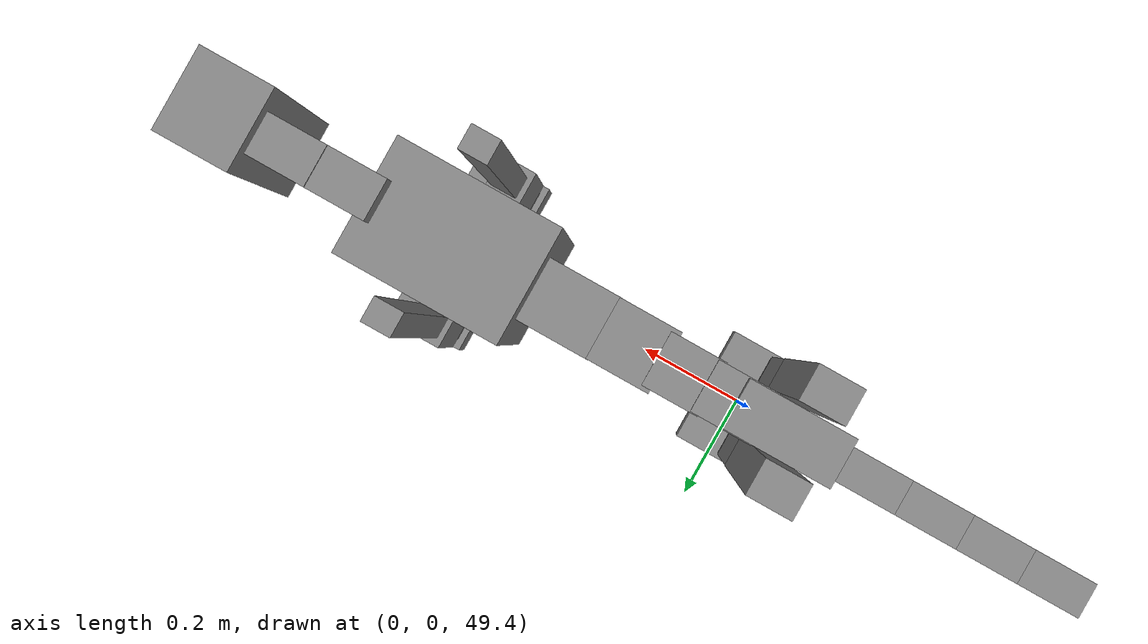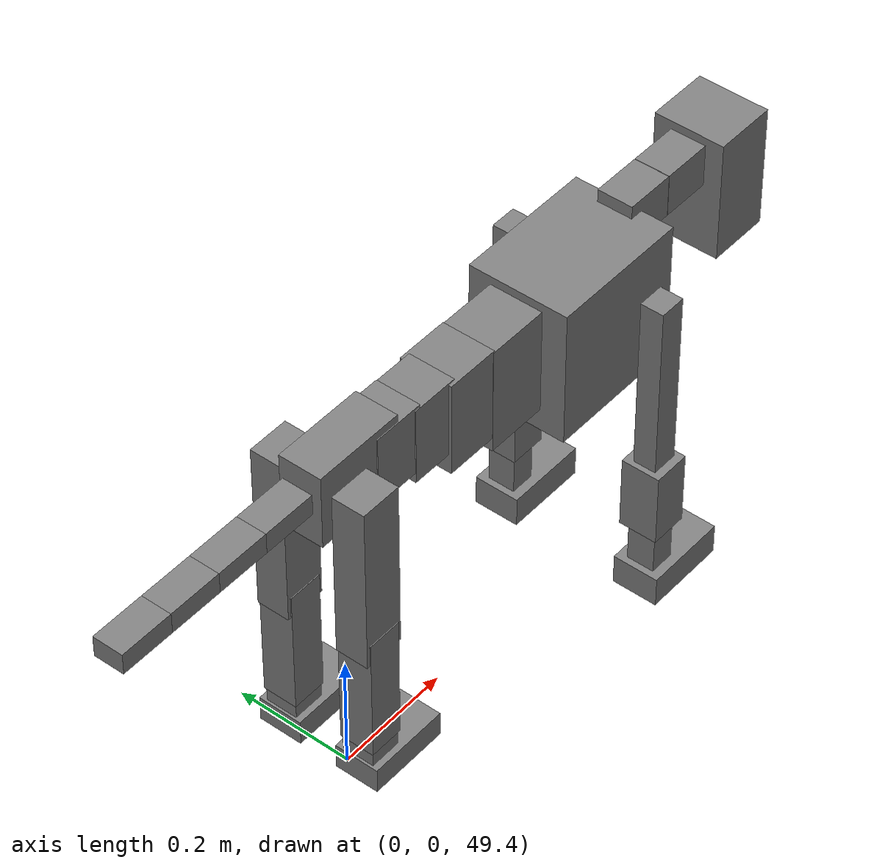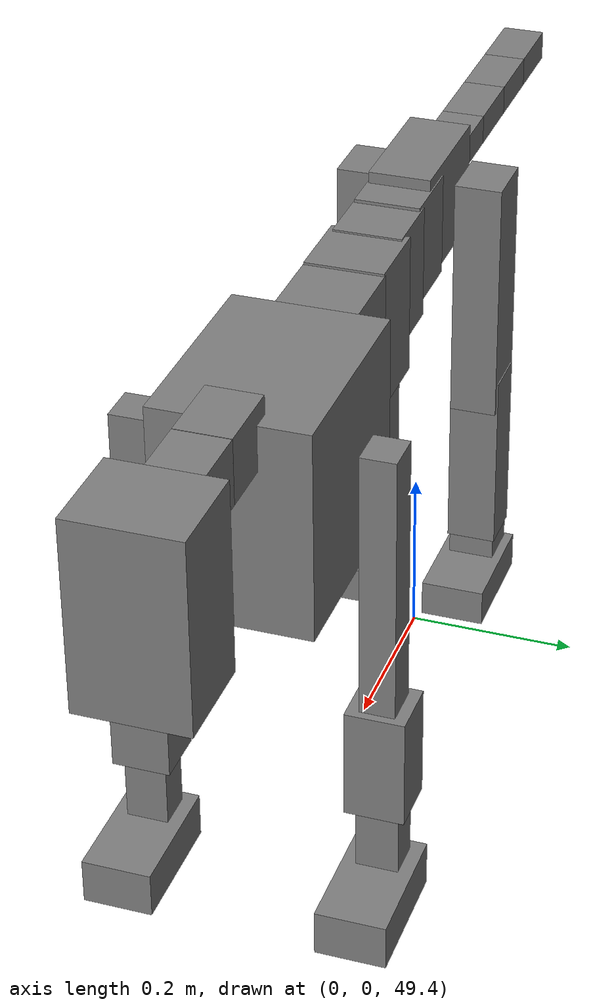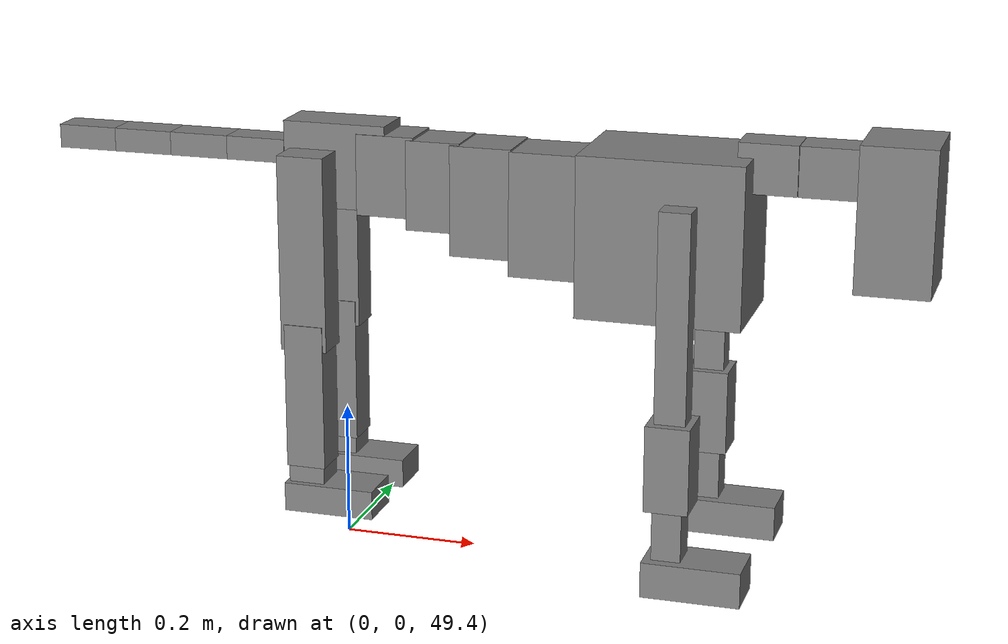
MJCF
<mujoco model="dog">

    <default>
        <joint armature="0.02" stiffness="1" damping="0.2" limited="true"/>
        <geom condim="3" friction="1 0.05 0.05" margin="0.01"/>
        <motor ctrllimited="true" ctrlrange="-1.0 1.0" forcelimited="true" gear="50"/>
    </default>

    <compiler inertiafromgeom="true" angle="radian"/>

    <option timestep="0.016" iterations="50" tolerance="1e-10" solver="Newton" jacobian="dense" cone="pyramidal"/>

    <size nconmax="20000" njmax="60000" nstack="5000000"/>
    <visual>
        <map force="0.1" zfar="30"/>
        <rgba haze="0.15 0.25 0.35 1"/>
        <quality shadowsize="2048"/>
        <global offwidth="800" offheight="800"/>
    </visual>

    <asset>
        <texture type="skybox" builtin="gradient" rgb1="0.3 0.5 0.7" rgb2="0 0 0" width="512" height="512"/>
        <texture name="texplane" type="2d" builtin="checker" rgb1=".2 .3 .4" rgb2=".1 0.15 0.2" width="512" height="512"
                 mark="cross" markrgb=".8 .8 .8"/>
        <texture name="texgeom" type="cube" builtin="flat" mark="cross" width="127" height="1278" rgb1="0.8 0.6 0.4"
                 rgb2="0.8 0.6 0.4" markrgb="1 1 1" random="0.01"/>

        <material name="matplane" reflectance="0.3" texture="texplane" texrepeat="1 1" texuniform="true"/>
        <material name="matgeom" texture="texgeom" texuniform="true" rgba="0.8 0.6 .4 1"/>
    </asset>

    <worldbody>
        <geom name="floor" pos="0 0 0" size="0 0 .25" type="plane" material="matplane" condim="3"/>

        <light directional="false" diffuse=".2 .2 .2" specular="0 0 0" pos="0 0 5" dir="0 0 -1" castshadow="false"/>
        <light mode="targetbodycom" target="torso" directional="false" diffuse=".8 .8 .8" specular="0.3 0.3 0.3"
               pos="0 0 4.0" dir="0 0 -1"/>

        <body name="root" pos="0 0 50">
            <freejoint name="root_1"/>
            <geom type="box" pos="0 0 -0.02" size="0.0774  0.0358  0.063" density="2030"/>

            <body name="spine1" pos="0.054 0 0">
                <joint name="spine1_y" axis="0 1 0" range="0 0.7" limited="true"/>
                <geom type="box" pos="0.02375 0 -0.03" size="0.04375  0.0375  0.05985" density="2030"/>

                <body name="spine2" pos="0.0612 0 0">
                    <joint name="spine2_y" axis="0 1 0" range="-0.15 0.15" limited="true"/>
                    <geom type="box" pos="0.03555  0  -0.04" size="0.04055  0.039  0.06615" density="2030"/>

                    <body name="spine3" pos="0.0730 0 0">
                        <joint name="spine3_y" axis="0 1 0" range="-0.15 0.15" limited="true"/>
                        <geom type="box" pos="0.03555  0  -0.057" size="0.04555  0.0445  0.081" density="2030"/>

                        <body name="spine4" pos="0.0780 0 0">
                            <joint name="spine4_y" axis="0 1 0" range="-0.15 0.15" limited="true"/>
                            <geom type="box" pos="0.05265  0  -0.07" size="0.05265  0.045  0.09135" density="2030"/>

                            <body name="torso" pos="0.1082 0 0">
                                <joint name="torso_y" axis="0 1 0" range="-0.15 0.15" limited="true"/>
                                <geom type="box" pos="0.11925  0  -0.085" size="0.11925  0.085  0.11745"
                                      density="2030"/>

                                <body name="neck1" pos="0.2160  0   0.0180">
                                    <joint name="neck1_y" axis="0 1 0" range="-1.2  -1" limited="true"/>
                                    <geom type="box" pos="0.0423  0  0" size="0.0423  0.03  0.036" density="2325"/>

                                    <body name="neck2" pos="0.0853  0  0">
                                        <joint name="neck2_y" axis="0 1 0" range="0.1  0" limited="true"/>
                                        <geom type="box" pos="0.0423  0  0" size="0.0423  0.03  0.036" density="2325"/>

                                        <body name="head" pos="0.0853  0  0">
                                            <joint name="head_y" axis="0 1 0" range="-0.3  -0.2" limited="true"/>
                                            <geom type="box" pos="0.0531  0  -0.055" size="0.0531  0.06  0.1044"
                                                  density="4030"/>

                                        </body>
                                    </body>
                                </body>

                                <body name="front_shoulder" pos="0.156  0   -0.0480">
                                    <joint name="front_shoulder_y" axis="0 1 0" range="-1 1.5" limited="true"/>
                                    <geom type="box" pos="0 0.13 -0.1382" size="0.0226  0.0193  0.1648" density="1158"/>
                                    <geom type="box" pos="0 -0.13 -0.1382" size="0.0226  0.0193  0.1648"
                                          density="1158"/>

                                    <body name="front_elbow" pos="0  0  -0.2763">
                                        <joint name="front_elbow_y" axis="0 1 0" range="-2 0" limited="true"/>
                                        <geom type="box" pos="0 0.13 -0.0633" size="0.0319  0.0326  0.0633"
                                              density="1081"/>
                                        <geom type="box" pos="0 -0.13 -0.0633" size="0.0319  0.0326  0.0633"
                                              density="1081"/>

                                        <body name="front_wrist" pos="0  0  -0.1267">
                                            <joint name="front_wrist_y" axis="0 1 0" range="-0.2 0" limited="true"/>
                                            <geom type="box" pos="0 0.13 -0.0447" size="0.0212  0.0235  0.0578"
                                                  density="1664"/>
                                            <geom type="box" pos="0 -0.13 -0.0447" size="0.0212  0.0235  0.0578"
                                                  density="1664"/>

                                            <body name="front_finger_end" pos="0  0  -0.0893">
                                                <joint name="front_finger_y" axis="0 1 0" range="-0.4 1"
                                                       limited="true"/>
                                                <geom type="box" pos="0.0389  0.13  -0.0111"
                                                      size="0.0714  0.0389  0.0261" density="1515"/>
                                                <geom type="box" pos="0.0389  -0.13  -0.0111"
                                                      size="0.0714  0.0389  0.0261" density="1515"/>

                                            </body>

                                        </body>
                                    </body>
                                </body>

                            </body>
                        </body>
                    </body>
                </body>
            </body>

            <body name="back_hip" pos="-0.03 0 -0.018">
                <joint name="back_hip_y" axis="0 1 0" range="-1.5 0.3" limited="true"/>
                <geom type="box" pos="0 0.07 -0.1223" size="0.0349  0.0274  0.1451" density="1154"/>
                <geom type="box" pos="0 -0.07 -0.1223" size="0.0349  0.0274  0.1451" density="1154"/>

                <body name="back_knee" pos="0  0  -0.2446">
                    <joint name="back_knee_y" axis="0 1 0" range="0 2.8" limited="true"/>
                    <geom type="box" pos="0 0.07 -0.0938" size="0.0294  0.0290  0.1093" density="1227"/>
                    <geom type="box" pos="0 -0.07 -0.0938" size="0.0294  0.0290  0.1093" density="1227"/>

                    <body name="back_ankle" pos="0  0  -0.1875">
                        <joint name="back_ankle_y" axis="0 1 0" range="-2.2 0" limited="true"/>
                        <geom type="box" pos="0 0.07 -0.0280" size="0.0270  0.0270  0.0392" density="1284"/>
                        <geom type="box" pos="0 -0.07 -0.0280" size="0.0270  0.0270  0.0392" density="1284"/>

                        <body name="back_toe_end" pos="0  0  -0.0560">
                            <joint name="back_toe_y" axis="0 1 0" range="-0.4 1" limited="true"/>
                            <geom type="box" pos="0.0374  0.07  -0.0067" size="0.0686  0.0374  0.0217" density="1515"/>
                            <geom type="box" pos="0.0374  -0.07  -0.0067" size="0.0686  0.0374  0.0217" density="1515"/>

                        </body>
                    </body>
                </body>
            </body>

            <body name="tail1" pos="-0.074 0 -0.006">
                <joint name="tail1_y" axis="0 1 0" range="-0.2 0.2" limited="true"/>
                <geom type="box" pos="-0.0536  0  0" size="0.045  0.025  0.0175" density="1587"/>

                <body name="tail2" pos="-0.09 0 0">
                    <joint name="tail2_y" axis="0 1 0" range="-0.2 0.2" limited="true"/>
                    <geom type="box" pos="-0.0536  0  0" size="0.045  0.025  0.0175" density="1587"/>

                    <body name="tail3" pos="-0.09 0 0">
                        <joint name="tail3_y" axis="0 1 0" range="-0.2 0.2" limited="true"/>
                        <geom type="box" pos="-0.0536  0  0" size="0.045  0.025  0.0175" density="1587"/>

                        <body name="tail4" pos="-0.09 0 0">
                            <joint name="tail4_y" axis="0 1 0" range="-0.2 0.2" limited="true"/>
                            <geom type="box" pos="-0.0536  0  0" size="0.045  0.025  0.0175" density="1587"/>

                        </body>
                    </body>
                </body>
            </body>
        </body>
    </worldbody>

    <actuator>
        <motor joint="spine1_y" forcerange="-150 150     "/>
        <motor joint="spine2_y" forcerange="-150 150     "/>
        <motor joint="spine3_y" forcerange="-150 150     "/>
        <motor joint="spine4_y" forcerange="-150 150     "/>
        <motor joint="torso_y" forcerange="-150 150     "/>
        <motor joint="neck1_y" forcerange="-100 100       "/>
        <motor joint="neck2_y" forcerange="-100 100       "/>
        <motor joint="head_y" forcerange="-150 150       "/>
        <motor joint="front_shoulder_y" forcerange="-113.71 114.79"/>
        <motor joint="front_elbow_y" forcerange="-161.61 175.53"/>
        <motor joint="front_wrist_y" forcerange="-63.24 125.08"/>
        <motor joint="front_finger_y" forcerange="-79.41 88.28"/>
        <motor joint="back_hip_y" forcerange="-240.42 325.06"/>
        <motor joint="back_knee_y" forcerange="-267.33 354.51"/>
        <motor joint="back_angle_y" forcerange="-102.57 229.05"/>
        <motor joint="back_toe_y" forcerange="-127.36 91.82"/>
        <motor joint="tail1_y" forcerange="-50 50     "/>
        <motor joint="tail2_y" forcerange="-50 50     "/>
        <motor joint="tail3_y" forcerange="-50 50     "/>
        <motor joint="tail4_y" forcerange="-50 50     "/>
    </actuator>
</mujoco>
